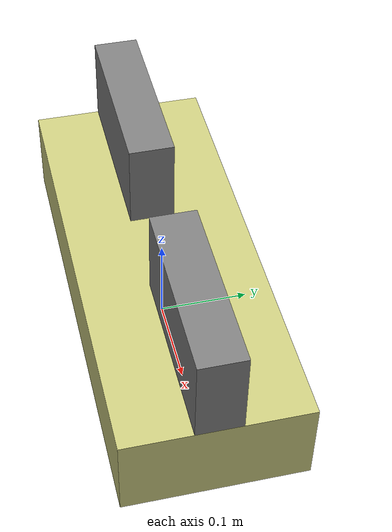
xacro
<?xml version="1.0"?>
<robot xmlns:xacro="http://www.ros.org/wiki/xacro" name="end_effector">
    <xacro:arg name="initial_positions_file" default="initial_positions.yaml" />

    <!-- Import end_effector urdf file -->
    <xacro:include filename="$(find custom_end_effector)/urdf/end_effector_description.xacro" />

    <!-- Import control_xacro -->
    <xacro:include filename="end_effector.ros2_control.xacro" />

    <xacro:end_effector_ros2_control name="FakeSystem" initial_positions_file="$(arg initial_positions_file)"/>

</robot>

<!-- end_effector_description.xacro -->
<robot name="end_effector">
  <!-- 材质定义 -->
  <material name="base_color">
    <color rgba="0.8 0.8 0.5 1"/>
  </material>
  <material name="joint_color">
    <color rgba="0.5 0.5 0.5 1"/>
  </material>

  <!-- 底座 -->
  <link name="base_link">
    <visual>
      <geometry>
        <box size="0.5 0.2 0.1"/>
      </geometry>
      <origin xyz="0 0 0.05"/>
      <material name="base_color"/>
    </visual>
    <collision>
      <geometry>
        <box size="0.5 0.2 0.1"/>
      </geometry>
      <origin xyz="0 0 0.05"/>
    </collision>
    <inertial>
      <mass value="1.0"/>
      <inertia ixx="0.01" ixy="0" ixz="0" iyy="0.01" iyz="0" izz="0.01"/>
      <origin xyz="0 0 0.05"/>
    </inertial>
  </link>

  <!-- 左侧移动部件 -->
  <link name="left_part">
    <visual>
      <geometry>
        <box size="0.2 0.05 0.1"/>
      </geometry>
      <origin xyz="0 0 0.05"/>
      <material name="joint_color"/>
    </visual>
    <collision>
      <geometry>
        <box size="0.2 0.05 0.1"/>
      </geometry>
      <origin xyz="0 0 0.05"/>
    </collision>
    <inertial>
      <mass value="0.5"/>
      <inertia ixx="0.001" ixy="0" ixz="0" iyy="0.001" iyz="0" izz="0.001"/>
      <origin xyz="0 0 0.05"/>
    </inertial>
  </link>

  <joint name="left_part_joint" type="prismatic">
    <parent link="base_link"/>
    <child link="left_part"/>
    <origin xyz="-0.15 0 0.1"/>
    <axis xyz="1 0 0"/> <!-- 沿x轴移动 -->
    <limit lower="-0.1" upper="0.1" effort="10" velocity="0.5"/>
  </joint>

  <!-- 右侧移动部件 -->
  <link name="right_part">
    <visual>
      <geometry>
        <box size="0.2 0.05 0.1"/>
      </geometry>
      <origin xyz="0 0 0.05"/>
      <material name="joint_color"/>
    </visual>
    <collision>
      <geometry>
        <box size="0.2 0.05 0.1"/>
      </geometry>
      <origin xyz="0 0 0.05"/>
    </collision>
    <inertial>
      <mass value="0.5"/>
      <inertia ixx="0.001" ixy="0" ixz="0" iyy="0.001" iyz="0" izz="0.001"/>
      <origin xyz="0 0 0.05"/>
    </inertial>
  </link>

  <joint name="right_part_joint" type="prismatic">
    <parent link="base_link"/>
    <child link="right_part"/>
    <origin xyz="0.15 0 0.1"/>
    <axis xyz="1 0 0"/> <!-- 沿x轴移动 -->
    <limit lower="-0.1" upper="0.1" effort="10" velocity="0.5"/>
  </joint>

  <!-- Gazebo插件 -->
  <gazebo>
    <plugin name="robot_state_publisher" filename="libgazebo_ros_control.so">
      <robotNamespace>/</robotNamespace>
    </plugin>
  </gazebo>

</robot>
